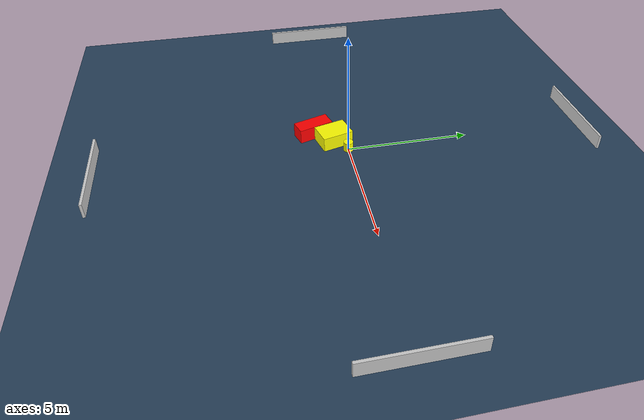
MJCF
<?xml version="1.0" ?>
<mujoco model="generated_environment">
  <option timestep="0.01" integrator="RK4" cone="elliptic"/>
  <default>
    <geom density="1"/>
  </default>
  <asset>
    <texture builtin="gradient" height="3072" name="skybox" rgb1="0.3 0.5 0.7" rgb2="0 0 0" type="skybox" width="512"/>
    <texture builtin="checker" height="300" name="groundplane" rgb1="0.2 0.3 0.4" rgb2="0.1 0.2 0.3" type="2d" width="300"/>
    <material name="groundplane" reflectance="0.2" texrepeat="5 5" texture="groundplane"/>
  </asset>
  <worldbody>
    <light dir="0 0 -1" directional="true" pos="0 0 1.5"/>
    <geom condim="3" friction="0.5 0.005 0.001" material="groundplane" name="floor" pos="0 0 0" size="0 0 0.05" type="plane"/>
    <body name="walls">
      <geom name="wall_1" condim="4" pos="-10.0 0.0 0.3" rgba="0.800000011920929 0.800000011920929 0.800000011920929 1.0" size="0.05 2.0 0.3" type="box"/>
      <geom name="wall_2" condim="4" pos="10.0 0.0 0.3" rgba="0.800000011920929 0.800000011920929 0.800000011920929 1.0" size="0.05 2.0 0.3" type="box"/>
      <geom name="wall_3" condim="4" pos="0.0 -10.0 0.3" rgba="0.800000011920929 0.800000011920929 0.800000011920929 1.0" size="2.0 0.05 0.3" type="box"/>
      <geom name="wall_4" condim="4" pos="0.0 10.0 0.3" rgba="0.800000011920929 0.800000011920929 0.800000011920929 1.0" size="2.0 0.05 0.3" type="box"/>
    </body>
    <body name="robot">
      <joint name="joint_x" type="slide" pos="0 0 0" axis="1 0 0"/>
      <joint name="joint_y" type="slide" pos="0 0 0" axis="0 1 0"/>
      <geom name="robot" type="cylinder" pos="0.0 0.0 0.2" size="0.2 0.2 0.0" mass="5.0" friction="1.0 0.005 0.0001" condim="4" rgba="1.0 1.0 0.0 1.0"/>
    </body>
    <body name="obstacle_1_movable">
      <geom name="obstacle_1_movable" condim="4" pos="-0.6879244313411029 -0.4745481686986902 0.3" euler="0 0 194.64264079506108" friction="0.0 0.005 0.001" rgba="1.0 1.0 0.0 1.0" size="0.4793613739844506 0.6439450851502297 0.3" type="box" mass="0.1"/>
      <joint type="free"/>
    </body>
    <body name="obstacle_2_static">
      <geom name="obstacle_2_static" condim="4" pos="-1.3426835833572361 -1.21586595330907 0.3" euler="0 0 197.48301565604817" friction="0.0 0.005 0.001" rgba="1.0 0.0 0.0 1.0" size="0.3235268945082524 0.7325195034532515 0.3" type="box"/>
    </body>
  </worldbody>
  <actuator>
    <motor name="actuator_x" joint="joint_x" gear="1" ctrlrange="-1 1"/>
    <motor name="actuator_y" joint="joint_y" gear="1" ctrlrange="-1 1"/>
  </actuator>
</mujoco>
